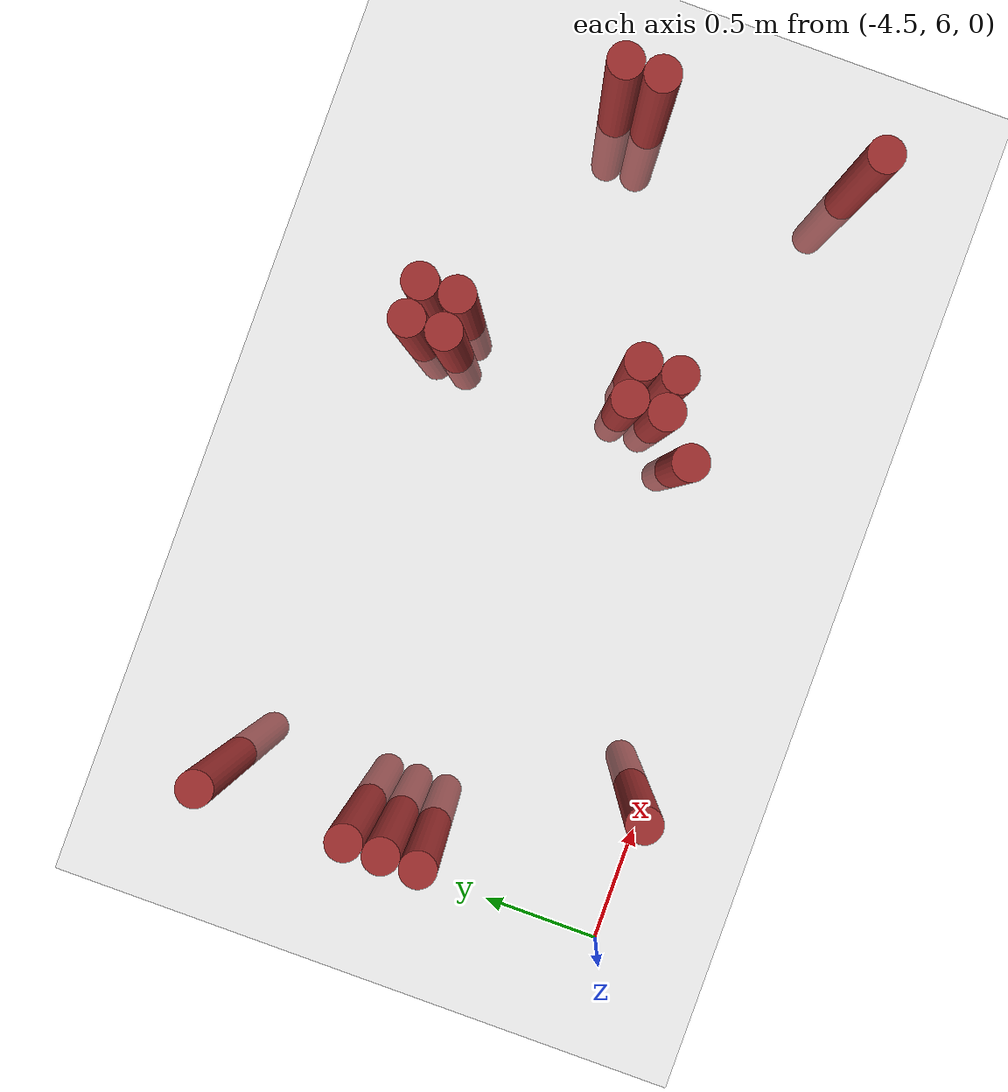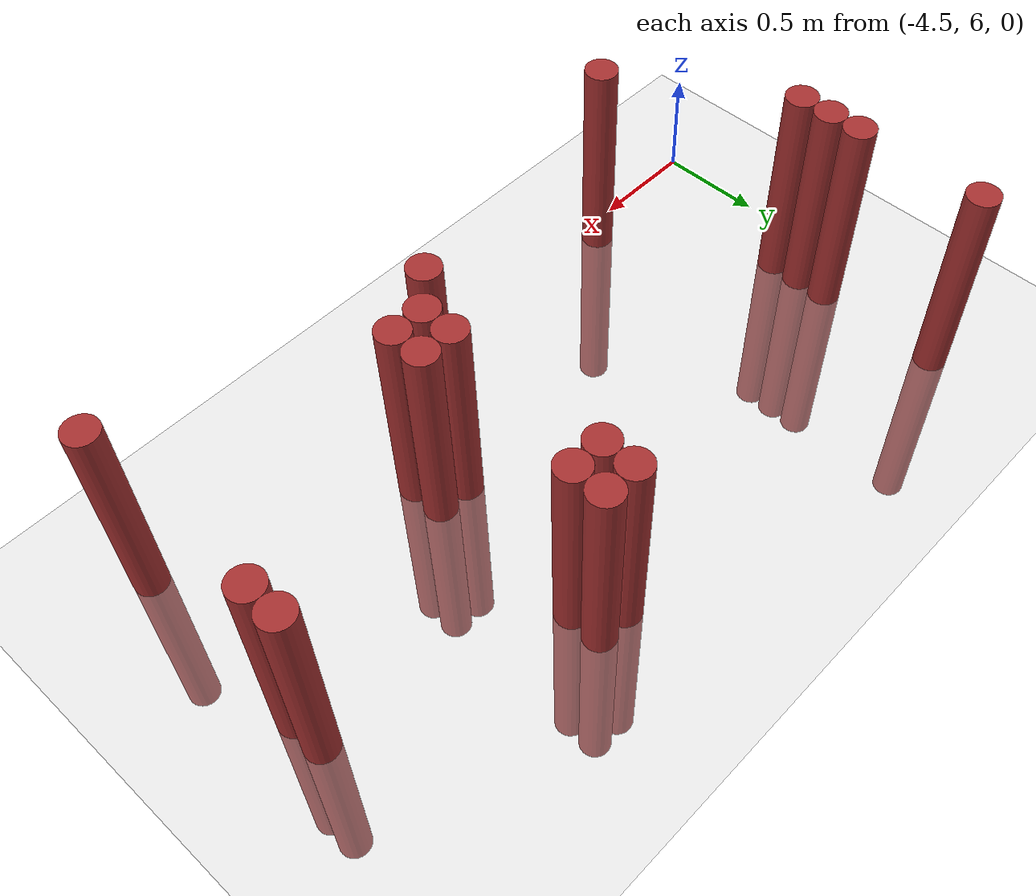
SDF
<sdf version="1.6">
 <world name="default">
  <model name="ground_plane">
   <static>1</static>
   <link name="link">
    <collision name="collision">
     <geometry><plane><normal>0 0 1</normal><size>100 100</size></plane></geometry>
     <surface><friction><ode><mu>100</mu><mu2>50</mu2></ode></friction></surface>
    </collision>
    <visual name="visual">
     <cast_shadows>0</cast_shadows>
     <geometry><plane><normal>0 0 1</normal><size>100 100</size></plane></geometry>
     <material>
      <script><uri>file://media/materials/scripts/gazebo.material</uri><name>Gazebo/Grey</name></script>
     </material>
    </visual>
   </link>
  </model>
  <model name="unit_cylinder_132">
   <static>1</static>
   <pose>-4.275000 6.825000 0.000000 0.000000 0.000000 0.000000</pose>
   <link name="link">
    <inertial>
     <mass>1</mass>
     <inertia><ixx>0.145833</ixx><ixy>0</ixy><ixz>0</ixz><iyy>0.145833</iyy><iyz>0</iyz><izz>0.125</izz></inertia>
    </inertial>
    <collision name="collision">
     <geometry><cylinder><radius>0.075000</radius><length>2</length></cylinder></geometry>
    </collision>
    <visual name="visual">
     <geometry><cylinder><radius>0.075000</radius><length>2</length></cylinder></geometry>
     <material>
      <ambient>0.648000 0.192000 0.192000 1</ambient>
      <diffuse>0.648000 0.192000 0.192000 1</diffuse>
     </material>
     <material>
      <script><name>Gazebo/Grey</name><uri>file://media/materials/scripts/gazebo.material</uri></script>
     </material>
    </visual>
   </link>
  </model>
  <model name="unit_cylinder_133">
   <static>1</static>
   <pose>-4.275000 6.975000 0.000000 0.000000 0.000000 0.000000</pose>
   <link name="link">
    <inertial>
     <mass>1</mass>
     <inertia><ixx>0.145833</ixx><ixy>0</ixy><ixz>0</ixz><iyy>0.145833</iyy><iyz>0</iyz><izz>0.125</izz></inertia>
    </inertial>
    <collision name="collision">
     <geometry><cylinder><radius>0.075000</radius><length>2</length></cylinder></geometry>
    </collision>
    <visual name="visual">
     <geometry><cylinder><radius>0.075000</radius><length>2</length></cylinder></geometry>
     <material>
      <ambient>0.648000 0.192000 0.192000 1</ambient>
      <diffuse>0.648000 0.192000 0.192000 1</diffuse>
     </material>
     <material>
      <script><name>Gazebo/Grey</name><uri>file://media/materials/scripts/gazebo.material</uri></script>
     </material>
    </visual>
   </link>
  </model>
  <model name="unit_cylinder_134">
   <static>1</static>
   <pose>-4.275000 7.125000 0.000000 0.000000 0.000000 0.000000</pose>
   <link name="link">
    <inertial>
     <mass>1</mass>
     <inertia><ixx>0.145833</ixx><ixy>0</ixy><ixz>0</ixz><iyy>0.145833</iyy><iyz>0</iyz><izz>0.125</izz></inertia>
    </inertial>
    <collision name="collision">
     <geometry><cylinder><radius>0.075000</radius><length>2</length></cylinder></geometry>
    </collision>
    <visual name="visual">
     <geometry><cylinder><radius>0.075000</radius><length>2</length></cylinder></geometry>
     <material>
      <ambient>0.648000 0.192000 0.192000 1</ambient>
      <diffuse>0.648000 0.192000 0.192000 1</diffuse>
     </material>
     <material>
      <script><name>Gazebo/Grey</name><uri>file://media/materials/scripts/gazebo.material</uri></script>
     </material>
    </visual>
   </link>
  </model>
  <model name="unit_cylinder_135">
   <static>1</static>
   <pose>-4.275000 7.725000 0.000000 0.000000 0.000000 0.000000</pose>
   <link name="link">
    <inertial>
     <mass>1</mass>
     <inertia><ixx>0.145833</ixx><ixy>0</ixy><ixz>0</ixz><iyy>0.145833</iyy><iyz>0</iyz><izz>0.125</izz></inertia>
    </inertial>
    <collision name="collision">
     <geometry><cylinder><radius>0.075000</radius><length>2</length></cylinder></geometry>
    </collision>
    <visual name="visual">
     <geometry><cylinder><radius>0.075000</radius><length>2</length></cylinder></geometry>
     <material>
      <ambient>0.648000 0.192000 0.192000 1</ambient>
      <diffuse>0.648000 0.192000 0.192000 1</diffuse>
     </material>
     <material>
      <script><name>Gazebo/Grey</name><uri>file://media/materials/scripts/gazebo.material</uri></script>
     </material>
    </visual>
   </link>
  </model>
  <model name="unit_cylinder_148">
   <static>1</static>
   <pose>-3.825000 6.075000 0.000000 0.000000 0.000000 0.000000</pose>
   <link name="link">
    <inertial>
     <mass>1</mass>
     <inertia><ixx>0.145833</ixx><ixy>0</ixy><ixz>0</ixz><iyy>0.145833</iyy><iyz>0</iyz><izz>0.125</izz></inertia>
    </inertial>
    <collision name="collision">
     <geometry><cylinder><radius>0.075000</radius><length>2</length></cylinder></geometry>
    </collision>
    <visual name="visual">
     <geometry><cylinder><radius>0.075000</radius><length>2</length></cylinder></geometry>
     <material>
      <ambient>0.648000 0.192000 0.192000 1</ambient>
      <diffuse>0.648000 0.192000 0.192000 1</diffuse>
     </material>
     <material>
      <script><name>Gazebo/Grey</name><uri>file://media/materials/scripts/gazebo.material</uri></script>
     </material>
    </visual>
   </link>
  </model>
  <model name="unit_cylinder_157">
   <static>1</static>
   <pose>-2.475000 6.375000 0.000000 0.000000 0.000000 0.000000</pose>
   <link name="link">
    <inertial>
     <mass>1</mass>
     <inertia><ixx>0.145833</ixx><ixy>0</ixy><ixz>0</ixz><iyy>0.145833</iyy><iyz>0</iyz><izz>0.125</izz></inertia>
    </inertial>
    <collision name="collision">
     <geometry><cylinder><radius>0.075000</radius><length>2</length></cylinder></geometry>
    </collision>
    <visual name="visual">
     <geometry><cylinder><radius>0.075000</radius><length>2</length></cylinder></geometry>
     <material>
      <ambient>0.648000 0.192000 0.192000 1</ambient>
      <diffuse>0.648000 0.192000 0.192000 1</diffuse>
     </material>
     <material>
      <script><name>Gazebo/Grey</name><uri>file://media/materials/scripts/gazebo.material</uri></script>
     </material>
    </visual>
   </link>
  </model>
  <model name="unit_cylinder_158">
   <static>1</static>
   <pose>-2.325000 6.525000 0.000000 0.000000 0.000000 0.000000</pose>
   <link name="link">
    <inertial>
     <mass>1</mass>
     <inertia><ixx>0.145833</ixx><ixy>0</ixy><ixz>0</ixz><iyy>0.145833</iyy><iyz>0</iyz><izz>0.125</izz></inertia>
    </inertial>
    <collision name="collision">
     <geometry><cylinder><radius>0.075000</radius><length>2</length></cylinder></geometry>
    </collision>
    <visual name="visual">
     <geometry><cylinder><radius>0.075000</radius><length>2</length></cylinder></geometry>
     <material>
      <ambient>0.648000 0.192000 0.192000 1</ambient>
      <diffuse>0.648000 0.192000 0.192000 1</diffuse>
     </material>
     <material>
      <script><name>Gazebo/Grey</name><uri>file://media/materials/scripts/gazebo.material</uri></script>
     </material>
    </visual>
   </link>
  </model>
  <model name="unit_cylinder_159">
   <static>1</static>
   <pose>-2.325000 6.675000 0.000000 0.000000 0.000000 0.000000</pose>
   <link name="link">
    <inertial>
     <mass>1</mass>
     <inertia><ixx>0.145833</ixx><ixy>0</ixy><ixz>0</ixz><iyy>0.145833</iyy><iyz>0</iyz><izz>0.125</izz></inertia>
    </inertial>
    <collision name="collision">
     <geometry><cylinder><radius>0.075000</radius><length>2</length></cylinder></geometry>
    </collision>
    <visual name="visual">
     <geometry><cylinder><radius>0.075000</radius><length>2</length></cylinder></geometry>
     <material>
      <ambient>0.648000 0.192000 0.192000 1</ambient>
      <diffuse>0.648000 0.192000 0.192000 1</diffuse>
     </material>
     <material>
      <script><name>Gazebo/Grey</name><uri>file://media/materials/scripts/gazebo.material</uri></script>
     </material>
    </visual>
   </link>
  </model>
  <model name="unit_cylinder_160">
   <static>1</static>
   <pose>-2.325000 7.425000 0.000000 0.000000 0.000000 0.000000</pose>
   <link name="link">
    <inertial>
     <mass>1</mass>
     <inertia><ixx>0.145833</ixx><ixy>0</ixy><ixz>0</ixz><iyy>0.145833</iyy><iyz>0</iyz><izz>0.125</izz></inertia>
    </inertial>
    <collision name="collision">
     <geometry><cylinder><radius>0.075000</radius><length>2</length></cylinder></geometry>
    </collision>
    <visual name="visual">
     <geometry><cylinder><radius>0.075000</radius><length>2</length></cylinder></geometry>
     <material>
      <ambient>0.648000 0.192000 0.192000 1</ambient>
      <diffuse>0.648000 0.192000 0.192000 1</diffuse>
     </material>
     <material>
      <script><name>Gazebo/Grey</name><uri>file://media/materials/scripts/gazebo.material</uri></script>
     </material>
    </visual>
   </link>
  </model>
  <model name="unit_cylinder_161">
   <static>1</static>
   <pose>-2.325000 7.575000 0.000000 0.000000 0.000000 0.000000</pose>
   <link name="link">
    <inertial>
     <mass>1</mass>
     <inertia><ixx>0.145833</ixx><ixy>0</ixy><ixz>0</ixz><iyy>0.145833</iyy><iyz>0</iyz><izz>0.125</izz></inertia>
    </inertial>
    <collision name="collision">
     <geometry><cylinder><radius>0.075000</radius><length>2</length></cylinder></geometry>
    </collision>
    <visual name="visual">
     <geometry><cylinder><radius>0.075000</radius><length>2</length></cylinder></geometry>
     <material>
      <ambient>0.648000 0.192000 0.192000 1</ambient>
      <diffuse>0.648000 0.192000 0.192000 1</diffuse>
     </material>
     <material>
      <script><name>Gazebo/Grey</name><uri>file://media/materials/scripts/gazebo.material</uri></script>
     </material>
    </visual>
   </link>
  </model>
  <model name="unit_cylinder_164">
   <static>1</static>
   <pose>-2.175000 6.525000 0.000000 0.000000 0.000000 0.000000</pose>
   <link name="link">
    <inertial>
     <mass>1</mass>
     <inertia><ixx>0.145833</ixx><ixy>0</ixy><ixz>0</ixz><iyy>0.145833</iyy><iyz>0</iyz><izz>0.125</izz></inertia>
    </inertial>
    <collision name="collision">
     <geometry><cylinder><radius>0.075000</radius><length>2</length></cylinder></geometry>
    </collision>
    <visual name="visual">
     <geometry><cylinder><radius>0.075000</radius><length>2</length></cylinder></geometry>
     <material>
      <ambient>0.648000 0.192000 0.192000 1</ambient>
      <diffuse>0.648000 0.192000 0.192000 1</diffuse>
     </material>
     <material>
      <script><name>Gazebo/Grey</name><uri>file://media/materials/scripts/gazebo.material</uri></script>
     </material>
    </visual>
   </link>
  </model>
  <model name="unit_cylinder_165">
   <static>1</static>
   <pose>-2.175000 6.675000 0.000000 0.000000 0.000000 0.000000</pose>
   <link name="link">
    <inertial>
     <mass>1</mass>
     <inertia><ixx>0.145833</ixx><ixy>0</ixy><ixz>0</ixz><iyy>0.145833</iyy><iyz>0</iyz><izz>0.125</izz></inertia>
    </inertial>
    <collision name="collision">
     <geometry><cylinder><radius>0.075000</radius><length>2</length></cylinder></geometry>
    </collision>
    <visual name="visual">
     <geometry><cylinder><radius>0.075000</radius><length>2</length></cylinder></geometry>
     <material>
      <ambient>0.648000 0.192000 0.192000 1</ambient>
      <diffuse>0.648000 0.192000 0.192000 1</diffuse>
     </material>
     <material>
      <script><name>Gazebo/Grey</name><uri>file://media/materials/scripts/gazebo.material</uri></script>
     </material>
    </visual>
   </link>
  </model>
  <model name="unit_cylinder_166">
   <static>1</static>
   <pose>-2.175000 7.425000 0.000000 0.000000 0.000000 0.000000</pose>
   <link name="link">
    <inertial>
     <mass>1</mass>
     <inertia><ixx>0.145833</ixx><ixy>0</ixy><ixz>0</ixz><iyy>0.145833</iyy><iyz>0</iyz><izz>0.125</izz></inertia>
    </inertial>
    <collision name="collision">
     <geometry><cylinder><radius>0.075000</radius><length>2</length></cylinder></geometry>
    </collision>
    <visual name="visual">
     <geometry><cylinder><radius>0.075000</radius><length>2</length></cylinder></geometry>
     <material>
      <ambient>0.648000 0.192000 0.192000 1</ambient>
      <diffuse>0.648000 0.192000 0.192000 1</diffuse>
     </material>
     <material>
      <script><name>Gazebo/Grey</name><uri>file://media/materials/scripts/gazebo.material</uri></script>
     </material>
    </visual>
   </link>
  </model>
  <model name="unit_cylinder_167">
   <static>1</static>
   <pose>-2.175000 7.575000 0.000000 0.000000 0.000000 0.000000</pose>
   <link name="link">
    <inertial>
     <mass>1</mass>
     <inertia><ixx>0.145833</ixx><ixy>0</ixy><ixz>0</ixz><iyy>0.145833</iyy><iyz>0</iyz><izz>0.125</izz></inertia>
    </inertial>
    <collision name="collision">
     <geometry><cylinder><radius>0.075000</radius><length>2</length></cylinder></geometry>
    </collision>
    <visual name="visual">
     <geometry><cylinder><radius>0.075000</radius><length>2</length></cylinder></geometry>
     <material>
      <ambient>0.648000 0.192000 0.192000 1</ambient>
      <diffuse>0.648000 0.192000 0.192000 1</diffuse>
     </material>
     <material>
      <script><name>Gazebo/Grey</name><uri>file://media/materials/scripts/gazebo.material</uri></script>
     </material>
    </visual>
   </link>
  </model>
  <model name="unit_cylinder_184">
   <static>1</static>
   <pose>-1.125000 6.075000 0.000000 0.000000 0.000000 0.000000</pose>
   <link name="link">
    <inertial>
     <mass>1</mass>
     <inertia><ixx>0.145833</ixx><ixy>0</ixy><ixz>0</ixz><iyy>0.145833</iyy><iyz>0</iyz><izz>0.125</izz></inertia>
    </inertial>
    <collision name="collision">
     <geometry><cylinder><radius>0.075000</radius><length>2</length></cylinder></geometry>
    </collision>
    <visual name="visual">
     <geometry><cylinder><radius>0.075000</radius><length>2</length></cylinder></geometry>
     <material>
      <ambient>0.648000 0.192000 0.192000 1</ambient>
      <diffuse>0.648000 0.192000 0.192000 1</diffuse>
     </material>
     <material>
      <script><name>Gazebo/Grey</name><uri>file://media/materials/scripts/gazebo.material</uri></script>
     </material>
    </visual>
   </link>
  </model>
  <model name="unit_cylinder_185">
   <static>1</static>
   <pose>-1.125000 6.975000 0.000000 0.000000 0.000000 0.000000</pose>
   <link name="link">
    <inertial>
     <mass>1</mass>
     <inertia><ixx>0.145833</ixx><ixy>0</ixy><ixz>0</ixz><iyy>0.145833</iyy><iyz>0</iyz><izz>0.125</izz></inertia>
    </inertial>
    <collision name="collision">
     <geometry><cylinder><radius>0.075000</radius><length>2</length></cylinder></geometry>
    </collision>
    <visual name="visual">
     <geometry><cylinder><radius>0.075000</radius><length>2</length></cylinder></geometry>
     <material>
      <ambient>0.648000 0.192000 0.192000 1</ambient>
      <diffuse>0.648000 0.192000 0.192000 1</diffuse>
     </material>
     <material>
      <script><name>Gazebo/Grey</name><uri>file://media/materials/scripts/gazebo.material</uri></script>
     </material>
    </visual>
   </link>
  </model>
  <model name="unit_cylinder_186">
   <static>1</static>
   <pose>-1.125000 7.125000 0.000000 0.000000 0.000000 0.000000</pose>
   <link name="link">
    <inertial>
     <mass>1</mass>
     <inertia><ixx>0.145833</ixx><ixy>0</ixy><ixz>0</ixz><iyy>0.145833</iyy><iyz>0</iyz><izz>0.125</izz></inertia>
    </inertial>
    <collision name="collision">
     <geometry><cylinder><radius>0.075000</radius><length>2</length></cylinder></geometry>
    </collision>
    <visual name="visual">
     <geometry><cylinder><radius>0.075000</radius><length>2</length></cylinder></geometry>
     <material>
      <ambient>0.648000 0.192000 0.192000 1</ambient>
      <diffuse>0.648000 0.192000 0.192000 1</diffuse>
     </material>
     <material>
      <script><name>Gazebo/Grey</name><uri>file://media/materials/scripts/gazebo.material</uri></script>
     </material>
    </visual>
   </link>
  </model>
 </world>
</sdf>
